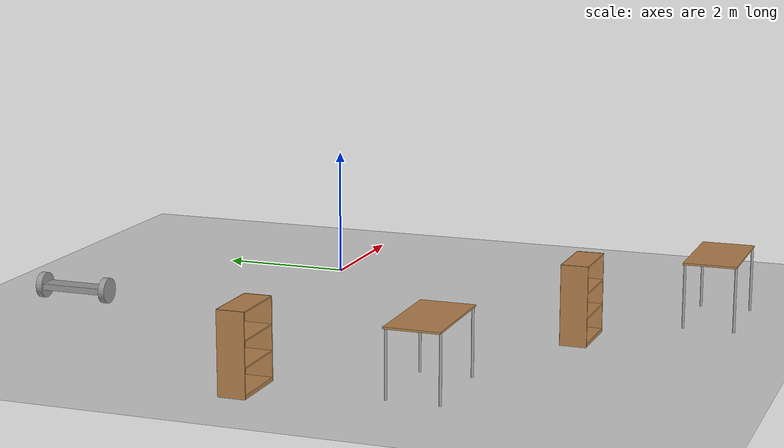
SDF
<sdf version="1.6">
 <world name="default">
  <model name="ground_plane">
   <static>1</static>
   <link name="link">
    <collision name="collision">
     <geometry><plane><normal>0 0 1</normal><size>100 100</size></plane></geometry>
     <surface>
      <contact><collide_bitmask>65535</collide_bitmask></contact>
      <friction><ode><mu>100</mu><mu2>50</mu2></ode></friction>
     </surface>
    </collision>
    <visual name="visual">
     <cast_shadows>0</cast_shadows>
     <geometry><plane><normal>0 0 1</normal><size>100 100</size></plane></geometry>
     <material>
      <script><uri>file://media/materials/scripts/gazebo.material</uri><name>Gazebo/Grey</name></script>
     </material>
    </visual>
   </link>
  </model>
  <model name="bookshelf">
   <static>1</static>
   <link name="link">
    <inertial><mass>1</mass></inertial>
    <collision name="back">
     <pose>0 0.005 0.6 0 -0 0</pose>
     <geometry><box><size>0.9 0.01 1.2</size></box></geometry>
    </collision>
    <visual name="visual1">
     <pose>0 0.005 0.6 0 -0 0</pose>
     <geometry><box><size>0.9 0.01 1.2</size></box></geometry>
     <material>
      <script><uri>file://media/materials/scripts/gazebo.material</uri><name>Gazebo/Wood</name></script>
     </material>
    </visual>
    <collision name="left_side">
     <pose>0.45 -0.195 0.6 0 -0 0</pose>
     <geometry><box><size>0.02 0.4 1.2</size></box></geometry>
    </collision>
    <visual name="visual2">
     <pose>0.45 -0.195 0.6 0 -0 0</pose>
     <geometry><box><size>0.02 0.4 1.2</size></box></geometry>
     <material>
      <script><uri>file://media/materials/scripts/gazebo.material</uri><name>Gazebo/Wood</name></script>
     </material>
    </visual>
    <collision name="right_side">
     <pose>-0.45 -0.195 0.6 0 -0 0</pose>
     <geometry><box><size>0.02 0.4 1.2</size></box></geometry>
    </collision>
    <visual name="visual3">
     <pose>-0.45 -0.195 0.6 0 -0 0</pose>
     <geometry><box><size>0.02 0.4 1.2</size></box></geometry>
     <material>
      <script><uri>file://media/materials/scripts/gazebo.material</uri><name>Gazebo/Wood</name></script>
     </material>
    </visual>
    <collision name="bottom">
     <pose>0 -0.195 0.03 0 -0 0</pose>
     <geometry><box><size>0.88 0.4 0.06</size></box></geometry>
    </collision>
    <visual name="visual4">
     <pose>0 -0.195 0.03 0 -0 0</pose>
     <geometry><box><size>0.88 0.4 0.06</size></box></geometry>
     <material>
      <script><uri>file://media/materials/scripts/gazebo.material</uri><name>Gazebo/Wood</name></script>
     </material>
    </visual>
    <collision name="top">
     <pose>0 -0.195 1.19 0 -0 0</pose>
     <geometry><box><size>0.88 0.4 0.02</size></box></geometry>
    </collision>
    <visual name="visual5">
     <pose>0 -0.195 1.19 0 -0 0</pose>
     <geometry><box><size>0.88 0.4 0.02</size></box></geometry>
     <material>
      <script><uri>file://media/materials/scripts/gazebo.material</uri><name>Gazebo/Wood</name></script>
     </material>
    </visual>
    <collision name="low_shelf">
     <pose>0 -0.195 0.43 0 -0 0</pose>
     <geometry><box><size>0.88 0.4 0.02</size></box></geometry>
    </collision>
    <visual name="visual6">
     <pose>0 -0.195 0.43 0 -0 0</pose>
     <geometry><box><size>0.88 0.4 0.02</size></box></geometry>
     <material>
      <script><uri>file://media/materials/scripts/gazebo.material</uri><name>Gazebo/Wood</name></script>
     </material>
    </visual>
    <collision name="high_shelf">
     <pose>0 -0.195 0.8 0 -0 0</pose>
     <geometry><box><size>0.88 0.4 0.02</size></box></geometry>
    </collision>
    <visual name="visual7">
     <pose>0 -0.195 0.8 0 -0 0</pose>
     <geometry><box><size>0.88 0.4 0.02</size></box></geometry>
     <material>
      <script><uri>file://media/materials/scripts/gazebo.material</uri><name>Gazebo/Wood</name></script>
     </material>
    </visual>
   </link>
   <pose>-2.65686 -4.63627 0 0 -0 0</pose>
  </model>
  <model name="bookshelf_0">
   <static>1</static>
   <link name="link">
    <inertial><mass>1</mass></inertial>
    <collision name="back">
     <pose>0 0.005 0.6 0 -0 0</pose>
     <geometry><box><size>0.9 0.01 1.2</size></box></geometry>
    </collision>
    <visual name="visual1">
     <pose>0 0.005 0.6 0 -0 0</pose>
     <geometry><box><size>0.9 0.01 1.2</size></box></geometry>
     <material>
      <script><uri>file://media/materials/scripts/gazebo.material</uri><name>Gazebo/Wood</name></script>
     </material>
    </visual>
    <collision name="left_side">
     <pose>0.45 -0.195 0.6 0 -0 0</pose>
     <geometry><box><size>0.02 0.4 1.2</size></box></geometry>
    </collision>
    <visual name="visual2">
     <pose>0.45 -0.195 0.6 0 -0 0</pose>
     <geometry><box><size>0.02 0.4 1.2</size></box></geometry>
     <material>
      <script><uri>file://media/materials/scripts/gazebo.material</uri><name>Gazebo/Wood</name></script>
     </material>
    </visual>
    <collision name="right_side">
     <pose>-0.45 -0.195 0.6 0 -0 0</pose>
     <geometry><box><size>0.02 0.4 1.2</size></box></geometry>
    </collision>
    <visual name="visual3">
     <pose>-0.45 -0.195 0.6 0 -0 0</pose>
     <geometry><box><size>0.02 0.4 1.2</size></box></geometry>
     <material>
      <script><uri>file://media/materials/scripts/gazebo.material</uri><name>Gazebo/Wood</name></script>
     </material>
    </visual>
    <collision name="bottom">
     <pose>0 -0.195 0.03 0 -0 0</pose>
     <geometry><box><size>0.88 0.4 0.06</size></box></geometry>
    </collision>
    <visual name="visual4">
     <pose>0 -0.195 0.03 0 -0 0</pose>
     <geometry><box><size>0.88 0.4 0.06</size></box></geometry>
     <material>
      <script><uri>file://media/materials/scripts/gazebo.material</uri><name>Gazebo/Wood</name></script>
     </material>
    </visual>
    <collision name="top">
     <pose>0 -0.195 1.19 0 -0 0</pose>
     <geometry><box><size>0.88 0.4 0.02</size></box></geometry>
    </collision>
    <visual name="visual5">
     <pose>0 -0.195 1.19 0 -0 0</pose>
     <geometry><box><size>0.88 0.4 0.02</size></box></geometry>
     <material>
      <script><uri>file://media/materials/scripts/gazebo.material</uri><name>Gazebo/Wood</name></script>
     </material>
    </visual>
    <collision name="low_shelf">
     <pose>0 -0.195 0.43 0 -0 0</pose>
     <geometry><box><size>0.88 0.4 0.02</size></box></geometry>
    </collision>
    <visual name="visual6">
     <pose>0 -0.195 0.43 0 -0 0</pose>
     <geometry><box><size>0.88 0.4 0.02</size></box></geometry>
     <material>
      <script><uri>file://media/materials/scripts/gazebo.material</uri><name>Gazebo/Wood</name></script>
     </material>
    </visual>
    <collision name="high_shelf">
     <pose>0 -0.195 0.8 0 -0 0</pose>
     <geometry><box><size>0.88 0.4 0.02</size></box></geometry>
    </collision>
    <visual name="visual7">
     <pose>0 -0.195 0.8 0 -0 0</pose>
     <geometry><box><size>0.88 0.4 0.02</size></box></geometry>
     <material>
      <script><uri>file://media/materials/scripts/gazebo.material</uri><name>Gazebo/Wood</name></script>
     </material>
    </visual>
   </link>
   <pose>-6.60588 -1.04816 0 0 -0 0</pose>
  </model>
  <model name="table_5">
   <static>1</static>
   <link name="link">
    <collision name="surface">
     <pose>0 0 1 0 -0 0</pose>
     <geometry><box><size>1.5 0.8 0.03</size></box></geometry>
     <surface><friction><ode><mu>0.6</mu><mu2>0.6</mu2></ode></friction></surface>
    </collision>
    <visual name="visual1">
     <pose>0 0 1 0 -0 0</pose>
     <geometry><box><size>1.5 0.8 0.03</size></box></geometry>
     <material>
      <script><uri>file://media/materials/scripts/gazebo.material</uri><name>Gazebo/Wood</name></script>
     </material>
    </visual>
    <collision name="front_left_leg">
     <pose>0.68 0.38 0.5 0 -0 0</pose>
     <geometry><cylinder><radius>0.02</radius><length>1</length></cylinder></geometry>
    </collision>
    <visual name="front_left_leg">
     <pose>0.68 0.38 0.5 0 -0 0</pose>
     <geometry><cylinder><radius>0.02</radius><length>1</length></cylinder></geometry>
     <material>
      <script><uri>file://media/materials/scripts/gazebo.material</uri><name>Gazebo/Grey</name></script>
     </material>
    </visual>
    <collision name="front_right_leg">
     <pose>0.68 -0.38 0.5 0 -0 0</pose>
     <geometry><cylinder><radius>0.02</radius><length>1</length></cylinder></geometry>
    </collision>
    <visual name="front_right_leg">
     <pose>0.68 -0.38 0.5 0 -0 0</pose>
     <geometry><cylinder><radius>0.02</radius><length>1</length></cylinder></geometry>
     <material>
      <script><uri>file://media/materials/scripts/gazebo.material</uri><name>Gazebo/Grey</name></script>
     </material>
    </visual>
    <collision name="back_right_leg">
     <pose>-0.68 -0.38 0.5 0 -0 0</pose>
     <geometry><cylinder><radius>0.02</radius><length>1</length></cylinder></geometry>
    </collision>
    <visual name="back_right_leg">
     <pose>-0.68 -0.38 0.5 0 -0 0</pose>
     <geometry><cylinder><radius>0.02</radius><length>1</length></cylinder></geometry>
     <material>
      <script><uri>file://media/materials/scripts/gazebo.material</uri><name>Gazebo/Grey</name></script>
     </material>
    </visual>
    <collision name="back_left_leg">
     <pose>-0.68 0.38 0.5 0 -0 0</pose>
     <geometry><cylinder><radius>0.02</radius><length>1</length></cylinder></geometry>
    </collision>
    <visual name="back_left_leg">
     <pose>-0.68 0.38 0.5 0 -0 0</pose>
     <geometry><cylinder><radius>0.02</radius><length>1</length></cylinder></geometry>
     <material>
      <script><uri>file://media/materials/scripts/gazebo.material</uri><name>Gazebo/Grey</name></script>
     </material>
    </visual>
   </link>
   <pose>-0.894112 -6.49399 0 0 -0 0</pose>
  </model>
  <model name="table_6">
   <static>1</static>
   <link name="link">
    <collision name="surface">
     <pose>0 0 1 0 -0 0</pose>
     <geometry><box><size>1.5 0.8 0.03</size></box></geometry>
     <surface><friction><ode><mu>0.6</mu><mu2>0.6</mu2></ode></friction></surface>
    </collision>
    <visual name="visual1">
     <pose>0 0 1 0 -0 0</pose>
     <geometry><box><size>1.5 0.8 0.03</size></box></geometry>
     <material>
      <script><uri>file://media/materials/scripts/gazebo.material</uri><name>Gazebo/Wood</name></script>
     </material>
    </visual>
    <collision name="front_left_leg">
     <pose>0.68 0.38 0.5 0 -0 0</pose>
     <geometry><cylinder><radius>0.02</radius><length>1</length></cylinder></geometry>
    </collision>
    <visual name="front_left_leg">
     <pose>0.68 0.38 0.5 0 -0 0</pose>
     <geometry><cylinder><radius>0.02</radius><length>1</length></cylinder></geometry>
     <material>
      <script><uri>file://media/materials/scripts/gazebo.material</uri><name>Gazebo/Grey</name></script>
     </material>
    </visual>
    <collision name="front_right_leg">
     <pose>0.68 -0.38 0.5 0 -0 0</pose>
     <geometry><cylinder><radius>0.02</radius><length>1</length></cylinder></geometry>
    </collision>
    <visual name="front_right_leg">
     <pose>0.68 -0.38 0.5 0 -0 0</pose>
     <geometry><cylinder><radius>0.02</radius><length>1</length></cylinder></geometry>
     <material>
      <script><uri>file://media/materials/scripts/gazebo.material</uri><name>Gazebo/Grey</name></script>
     </material>
    </visual>
    <collision name="back_right_leg">
     <pose>-0.68 -0.38 0.5 0 -0 0</pose>
     <geometry><cylinder><radius>0.02</radius><length>1</length></cylinder></geometry>
    </collision>
    <visual name="back_right_leg">
     <pose>-0.68 -0.38 0.5 0 -0 0</pose>
     <geometry><cylinder><radius>0.02</radius><length>1</length></cylinder></geometry>
     <material>
      <script><uri>file://media/materials/scripts/gazebo.material</uri><name>Gazebo/Grey</name></script>
     </material>
    </visual>
    <collision name="back_left_leg">
     <pose>-0.68 0.38 0.5 0 -0 0</pose>
     <geometry><cylinder><radius>0.02</radius><length>1</length></cylinder></geometry>
    </collision>
    <visual name="back_left_leg">
     <pose>-0.68 0.38 0.5 0 -0 0</pose>
     <geometry><cylinder><radius>0.02</radius><length>1</length></cylinder></geometry>
     <material>
      <script><uri>file://media/materials/scripts/gazebo.material</uri><name>Gazebo/Grey</name></script>
     </material>
    </visual>
   </link>
   <pose>-5.73362 -3.55355 0 0 -0 0</pose>
  </model>
  <model name="Robot_1">
   <link name="link_0_clone">
    <pose>-0.383162 3.41807 1.14123 1.19943 1.43928 -0.375472</pose>
    <inertial>
     <mass>1</mass>
     <inertia>
      <ixx>0.166667</ixx>
      <ixy>0</ixy>
      <ixz>0</ixz>
      <iyy>0.166667</iyy>
      <iyz>0</iyz>
      <izz>0.166667</izz>
     </inertia>
     <pose>0 0 0.2 0 -0 0</pose>
    </inertial>
    <visual name="visual">
     <geometry><box><size>0.3 0.1 1</size></box></geometry>
     <material>
      <lighting>1</lighting>
      <script><uri>file://media/materials/scripts/gazebo.material</uri><name>Gazebo/Grey</name></script>
      <shader type="pixel"><normal_map>__default__</normal_map></shader>
      <ambient>0.3 0.3 0.3 1</ambient>
      <diffuse>0.7 0.7 0.7 1</diffuse>
      <specular>0.01 0.01 0.01 1</specular>
      <emissive>0 0 0 1</emissive>
     </material>
    </visual>
    <collision name="collision">
     <geometry><box><size>0.3 0.1 1</size></box></geometry>
     <surface>
      <friction>
       <ode><mu>1</mu><mu2>1</mu2><fdir1>0 0 0</fdir1><slip1>0</slip1><slip2>0</slip2></ode>
       <torsional>
        <coefficient>1</coefficient>
        <patch_radius>0</patch_radius>
        <surface_radius>0</surface_radius>
        <use_patch_radius>1</use_patch_radius>
        <ode><slip>0</slip></ode>
       </torsional>
      </friction>
      <bounce><restitution_coefficient>0</restitution_coefficient><threshold>1e+06</threshold></bounce>
      <contact>
       <collide_without_contact>0</collide_without_contact>
       <collide_without_contact_bitmask>1</collide_without_contact_bitmask>
       <collide_bitmask>1</collide_bitmask>
       <ode>
        <soft_cfm>0</soft_cfm>
        <soft_erp>0.2</soft_erp>
        <kp>1e+13</kp>
        <kd>1</kd>
        <max_vel>0.01</max_vel>
        <min_depth>0</min_depth>
       </ode>
       <bullet>
        <split_impulse>1</split_impulse>
        <split_impulse_penetration_threshold>-0.01</split_impulse_penetration_threshold>
        <soft_cfm>0</soft_cfm>
        <soft_erp>0.2</soft_erp>
        <kp>1e+13</kp>
        <kd>1</kd>
       </bullet>
      </contact>
     </surface>
    </collision>
   </link>
   <link name="link_1_clone_0">
    <pose>-0.38708 2.86868 1.16739 1.25976 1.41467 -0.314519</pose>
    <inertial>
     <mass>1</mass>
     <inertia><ixx>0.145833</ixx><ixy>0</ixy><ixz>0</ixz><iyy>0.145833</iyy><iyz>0</iyz><izz>0.125</izz></inertia>
     <pose>0 0 0.2 0 -0 0</pose>
    </inertial>
    <visual name="visual">
     <geometry><cylinder><radius>0.2</radius><length>0.1</length></cylinder></geometry>
     <material>
      <lighting>1</lighting>
      <script><uri>file://media/materials/scripts/gazebo.material</uri><name>Gazebo/Grey</name></script>
      <shader type="pixel"><normal_map>__default__</normal_map></shader>
      <ambient>0.3 0.3 0.3 1</ambient>
      <diffuse>0.7 0.7 0.7 1</diffuse>
      <specular>0.01 0.01 0.01 1</specular>
      <emissive>0 0 0 1</emissive>
     </material>
    </visual>
    <collision name="collision">
     <geometry><cylinder><radius>0.2</radius><length>0.1</length></cylinder></geometry>
     <surface>
      <friction>
       <ode><mu>1</mu><mu2>1</mu2><fdir1>0 0 0</fdir1><slip1>0</slip1><slip2>0</slip2></ode>
       <torsional>
        <coefficient>1</coefficient>
        <patch_radius>0</patch_radius>
        <surface_radius>0</surface_radius>
        <use_patch_radius>1</use_patch_radius>
        <ode><slip>0</slip></ode>
       </torsional>
      </friction>
      <bounce><restitution_coefficient>0</restitution_coefficient><threshold>1e+06</threshold></bounce>
      <contact>
       <collide_without_contact>0</collide_without_contact>
       <collide_without_contact_bitmask>1</collide_without_contact_bitmask>
       <collide_bitmask>1</collide_bitmask>
       <ode>
        <soft_cfm>0</soft_cfm>
        <soft_erp>0.2</soft_erp>
        <kp>1e+13</kp>
        <kd>1</kd>
        <max_vel>0.01</max_vel>
        <min_depth>0</min_depth>
       </ode>
       <bullet>
        <split_impulse>1</split_impulse>
        <split_impulse_penetration_threshold>-0.01</split_impulse_penetration_threshold>
        <soft_cfm>0</soft_cfm>
        <soft_erp>0.2</soft_erp>
        <kp>1e+13</kp>
        <kd>1</kd>
       </bullet>
      </contact>
     </surface>
    </collision>
   </link>
   <link name="link_1_clone_1">
    <pose>-0.379248 3.96746 1.11506 1.25976 1.41467 -0.314519</pose>
    <inertial>
     <mass>1</mass>
     <inertia><ixx>0.145833</ixx><ixy>0</ixy><ixz>0</ixz><iyy>0.145833</iyy><iyz>0</iyz><izz>0.125</izz></inertia>
     <pose>0 0 0.2 0 -0 0</pose>
    </inertial>
    <visual name="visual">
     <geometry><cylinder><radius>0.2</radius><length>0.1</length></cylinder></geometry>
     <material>
      <lighting>1</lighting>
      <script><uri>file://media/materials/scripts/gazebo.material</uri><name>Gazebo/Grey</name></script>
      <shader type="pixel"><normal_map>__default__</normal_map></shader>
      <ambient>0.3 0.3 0.3 1</ambient>
      <diffuse>0.7 0.7 0.7 1</diffuse>
      <specular>0.01 0.01 0.01 1</specular>
      <emissive>0 0 0 1</emissive>
     </material>
    </visual>
    <collision name="collision">
     <geometry><cylinder><radius>0.2</radius><length>0.1</length></cylinder></geometry>
     <surface>
      <friction>
       <ode><mu>1</mu><mu2>1</mu2><fdir1>0 0 0</fdir1><slip1>0</slip1><slip2>0</slip2></ode>
       <torsional>
        <coefficient>1</coefficient>
        <patch_radius>0</patch_radius>
        <surface_radius>0</surface_radius>
        <use_patch_radius>1</use_patch_radius>
        <ode><slip>0</slip></ode>
       </torsional>
      </friction>
      <bounce><restitution_coefficient>0</restitution_coefficient><threshold>1e+06</threshold></bounce>
      <contact>
       <collide_without_contact>0</collide_without_contact>
       <collide_without_contact_bitmask>1</collide_without_contact_bitmask>
       <collide_bitmask>1</collide_bitmask>
       <ode>
        <soft_cfm>0</soft_cfm>
        <soft_erp>0.2</soft_erp>
        <kp>1e+13</kp>
        <kd>1</kd>
        <max_vel>0.01</max_vel>
        <min_depth>0</min_depth>
       </ode>
       <bullet>
        <split_impulse>1</split_impulse>
        <split_impulse_penetration_threshold>-0.01</split_impulse_penetration_threshold>
        <soft_cfm>0</soft_cfm>
        <soft_erp>0.2</soft_erp>
        <kp>1e+13</kp>
        <kd>1</kd>
       </bullet>
      </contact>
     </surface>
    </collision>
   </link>
   <joint name="link_0_clone_JOINT_2" type="revolute">
    <parent>link_0_clone</parent>
    <child>link_1_clone_0</child>
    <axis>
     <xyz>0 0 1</xyz>
     <use_parent_model_frame>0</use_parent_model_frame>
     <limit>
      <lower>-1.79769e+308</lower>
      <upper>1.79769e+308</upper>
      <effort>-1</effort>
      <velocity>-1</velocity>
     </limit>
     <dynamics>
      <spring_reference>0</spring_reference>
      <spring_stiffness>0</spring_stiffness>
      <damping>0</damping>
     </dynamics>
    </axis>
    <physics>
     <ode><limit><cfm>0</cfm><erp>0.2</erp></limit><suspension><cfm>0</cfm><erp>0.2</erp></suspension></ode>
    </physics>
   </joint>
   <joint name="link_0_clone_JOINT_4" type="revolute">
    <parent>link_0_clone</parent>
    <child>link_1_clone_1</child>
    <axis>
     <xyz>0 0 1</xyz>
     <use_parent_model_frame>0</use_parent_model_frame>
     <limit>
      <lower>-1.79769e+308</lower>
      <upper>1.79769e+308</upper>
      <effort>-1</effort>
      <velocity>-1</velocity>
     </limit>
     <dynamics>
      <spring_reference>0</spring_reference>
      <spring_stiffness>0</spring_stiffness>
      <damping>0</damping>
     </dynamics>
    </axis>
    <physics>
     <ode><limit><cfm>0</cfm><erp>0.2</erp></limit><suspension><cfm>0</cfm><erp>0.2</erp></suspension></ode>
    </physics>
   </joint>
   <static>0</static>
   <pose>-1.88921 -0.144777 0.439176 -0.008227 -1.44386 0.056297</pose>
  </model>
 </world>
</sdf>
